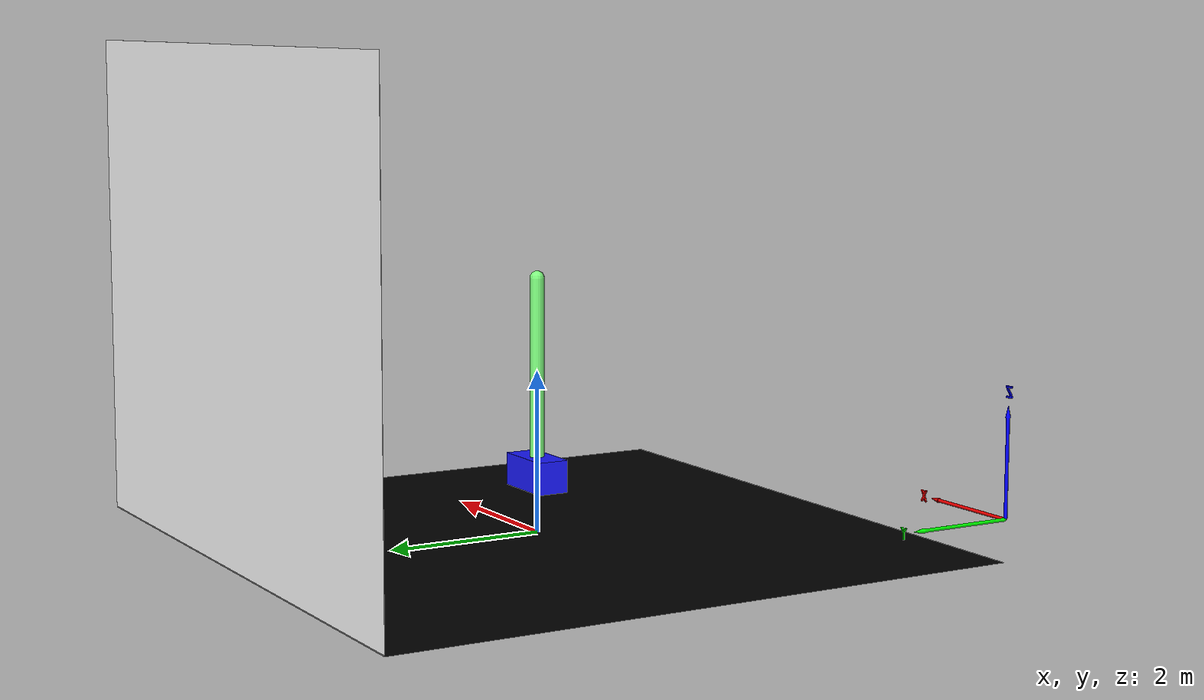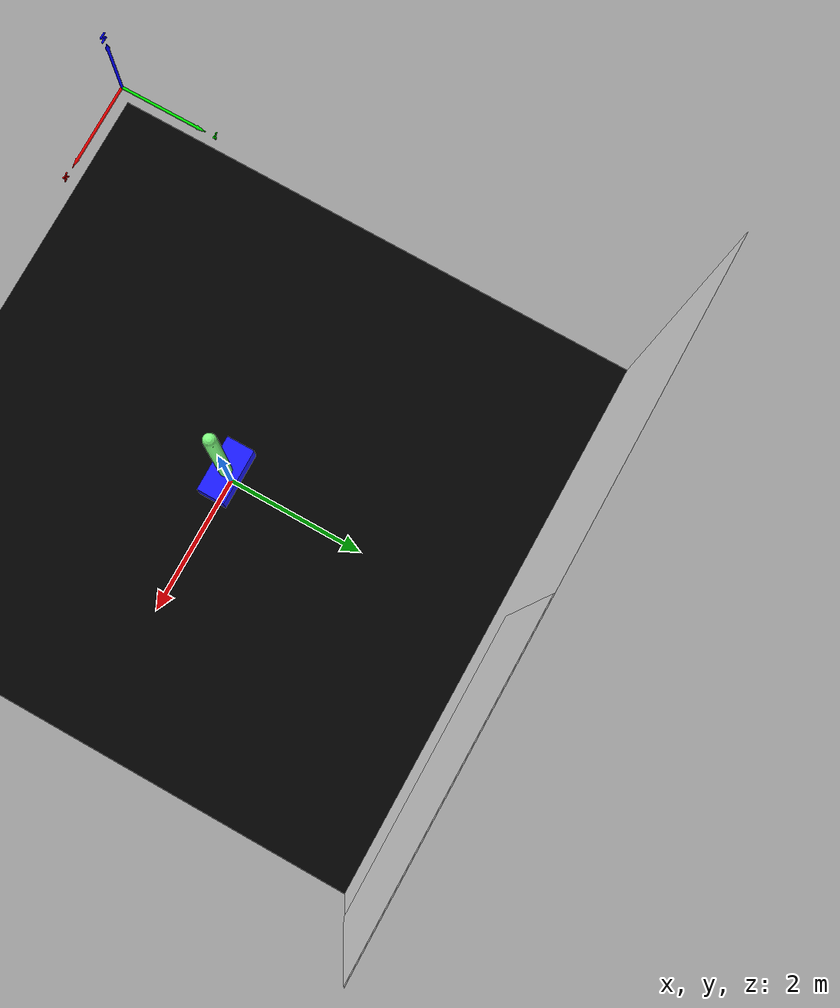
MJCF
<mujoco>
    <option timestep="0.05" gravity="0 0 -9.81" integrator="RK4">
		<flag sensornoise="enable" energy="enable"/>
	</option>
    <default>
        <geom contype='0' friction='1 0.1 0.1'/>
    </default>

    <include file="mlpro.xml"></include>

    <worldbody>

        <body name="cart" pos="0 0 0.75">
            <geom name="cart" type="box" size="0.4 0.2 0.2" rgba="0.1 0.1 1 1"/>
            <joint name="slide" type="slide" axis="1 0 0"/>
            <body name="pole" pos="0 0 1.2">
                <geom name="pole" type="capsule" size="0.09 1.2" rgba="0.5 1 0.5 1"/>
                <joint name="hinge" type="hinge" pos="0 0 -1.2" axis="0 1 0"/>
            </body>
        </body>
    </worldbody>
    <actuator>
        <motor name="force" joint="slide" ctrllimited="true" ctrlrange="-50 50"/>
    </actuator>
    <visual>
        <map fogstart="3" fogend="5" znear="0.05"/>
    </visual>
</mujoco>

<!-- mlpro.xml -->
<mujoco>
    <compiler meshdir="assets/mlpro/mesh/" texturedir="assets/mlpro/texture/"/>
    <asset>
        <mesh name="arrow" file="Arrow.stl"/>
        <mesh name="x_letter" file="X_letter.stl"/>
        <mesh name="y_letter" file="Y_letter.stl"/>
        <mesh name="z_letter" file="Z_letter.stl"/>
        <texture name="mlpro_logo" type="2d" file="logo.png"/>
        <texture name="texplane" type="2d" builtin="checker" rgb1="0 0 0" rgb2="0 0 0" width="40" height="40" mark="cross" markrgb="0.5 0.5 0.5"/>

        <material name="mlpro_mat" texture="mlpro_logo" rgba="1 1 1 1"/>

        <material name="grid" texture="texplane" texrepeat="2 2" texuniform="true" reflectance="0"/>
    </asset>
    <worldbody>
    <!-- Light -->
    <light diffuse="1 1 1" directional="true" castshadow="false" pos="0 0 0" dir="0 0 -1"/>
    <light diffuse="0.1 0.1 0.1" directional="true" castshadow="false" pos="0 0 0" dir="0 1 0"/>

    <!-- Floor -->
	<geom type="plane" material="grid" size="4 4 0.1"/>

    <!-- Back with MLPro Logo -->
    <geom type="plane" size="4 3 0.1" pos="0 4 3" quat="0.7071068 0.7071068 0 0" rgba="1 1 1 1"/>
    <geom type="plane" material="mlpro_mat" size="2 2 0.1" pos="2 3.99 4" quat="0.7071068 0.7071068 0 0" rgba="1 1 1 1"/>

    <!-- Axis Arrow -->
    <geom type="mesh" mesh="arrow" pos="-4 -4 0.5" quat="1 0 0 0" rgba="0 0 1 1"/>
    <geom type="mesh" mesh="arrow" pos="-4 -4 0.5" quat="0.7071068 -0.7071068 0 0" rgba="0 1 0 1"/>
    <geom type="mesh" mesh="arrow" pos="-4 -4 0.5" quat="0.7071068 0 0.7071068 0" rgba="1 0 0 1"/>

    <!-- Axis Text -->
    <geom type="mesh" mesh="x_letter" pos="-2.5 -4 0.5" quat="0.7071068 0.7071068 0 0" rgba="1 0 0 1"/>
    <geom type="mesh" mesh="y_letter" pos="-4 -2.5 0.5" quat="0.7071068 0.7071068 0 0" rgba="0 1 0 1"/>
    <geom type="mesh" mesh="z_letter" pos="-4 -4 2" quat="0.7071068 0.7071068 0 0" rgba="0 0 1 1"/>
    </worldbody>
</mujoco>
